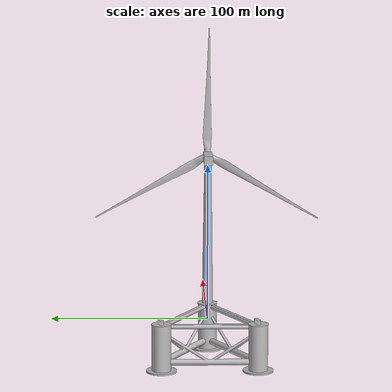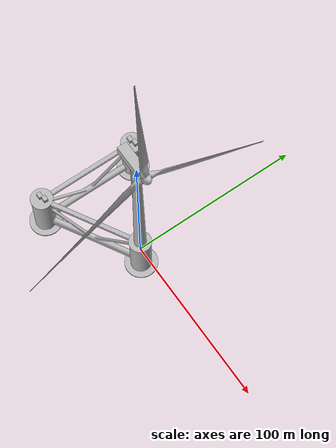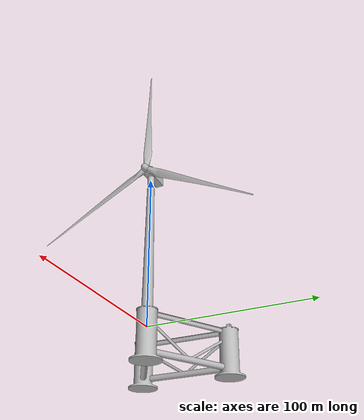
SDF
<?xml version="1.0"?>
<sdf version="1.9" xmlns:insem="https://example.org/insem">
  <model name="offshore_wind_turbine">
    <static>false</static>
    <self_collide>false</self_collide>
    <insem:asset id="FWT-01" class="floating_wind_turbine" name="Aerogenerador flotante offshore 8,4 MW"/>
    <link name="platform">
      <pose>0.00000 0.00000 0.00000 0.00000 -0.00000 0.00000</pose>
      <gravity>false</gravity>
      <inertial>
        <pose>0.0000 0.0000 0.0000 0 0 0</pose>
        <mass>10000.0</mass>
        <inertia><ixx>1666.7</ixx><ixy>0</ixy><ixz>0</ixz><iyy>1666.7</iyy><iyz>0</iyz><izz>1666.7</izz></inertia>
      </inertial>
    </link>
    <link name="column_0">
      <pose>0.00000 0.00000 0.00000 0.00000 -0.00000 0.00000</pose>
      <gravity>false</gravity>
      <inertial>
        <pose>0.0000 0.0000 -4.7500 0 0 0</pose>
        <mass>10000.0</mass>
        <inertia><ixx>1076041.7</ixx><ixy>0</ixy><ixz>0</ixz><iyy>1076041.7</iyy><iyz>0</iyz><izz>601666.7</izz></inertia>
      </inertial>
      <collision name="c0"><pose>0.00000 0.00000 -9.25000 0.00000 -0.00000 0.00000</pose><geometry><cylinder><radius>6.000</radius><length>21.500</length></cylinder></geometry></collision>
      <collision name="c1"><pose>0.00000 0.00000 5.75000 0.00000 -0.00000 0.00000</pose><geometry><cylinder><radius>6.000</radius><length>8.500</length></cylinder></geometry></collision>
      <collision name="c2"><pose>0.00000 0.00000 -19.50000 0.00000 -0.00000 0.00000</pose><geometry><cylinder><radius>9.500</radius><length>1.000</length></cylinder></geometry></collision>
      <collision name="c3"><pose>0.00000 0.00000 10.25000 0.00000 -0.00000 0.00000</pose><geometry><cylinder><radius>6.400</radius><length>0.500</length></cylinder></geometry></collision>
      <visual name="mesh"><geometry><mesh><uri>meshes/column_0.obj</uri></mesh></geometry></visual>
    </link>
    <link name="column_1">
      <pose>-51.96152 30.00000 0.00000 0.00000 -0.00000 0.00000</pose>
      <gravity>false</gravity>
      <inertial>
        <pose>0.0000 0.0000 -4.7500 0 0 0</pose>
        <mass>10000.0</mass>
        <inertia><ixx>1076041.7</ixx><ixy>0</ixy><ixz>0</ixz><iyy>1076041.7</iyy><iyz>0</iyz><izz>601666.7</izz></inertia>
      </inertial>
      <collision name="c0"><pose>0.00000 0.00000 -9.25000 0.00000 -0.00000 0.00000</pose><geometry><cylinder><radius>6.000</radius><length>21.500</length></cylinder></geometry></collision>
      <collision name="c1"><pose>0.00000 0.00000 5.75000 0.00000 -0.00000 0.00000</pose><geometry><cylinder><radius>6.000</radius><length>8.500</length></cylinder></geometry></collision>
      <collision name="c2"><pose>0.00000 0.00000 -19.50000 0.00000 -0.00000 0.00000</pose><geometry><cylinder><radius>9.500</radius><length>1.000</length></cylinder></geometry></collision>
      <collision name="c3"><pose>0.00000 0.00000 10.25000 0.00000 -0.00000 0.00000</pose><geometry><cylinder><radius>6.400</radius><length>0.500</length></cylinder></geometry></collision>
      <visual name="mesh"><geometry><mesh><uri>meshes/column_1.obj</uri></mesh></geometry></visual>
    </link>
    <link name="column_2">
      <pose>-51.96152 -30.00000 0.00000 0.00000 -0.00000 0.00000</pose>
      <gravity>false</gravity>
      <inertial>
        <pose>0.0000 0.0000 -4.7500 0 0 0</pose>
        <mass>10000.0</mass>
        <inertia><ixx>1076041.7</ixx><ixy>0</ixy><ixz>0</ixz><iyy>1076041.7</iyy><iyz>0</iyz><izz>601666.7</izz></inertia>
      </inertial>
      <collision name="c0"><pose>0.00000 0.00000 -9.25000 0.00000 -0.00000 0.00000</pose><geometry><cylinder><radius>6.000</radius><length>21.500</length></cylinder></geometry></collision>
      <collision name="c1"><pose>0.00000 0.00000 5.75000 0.00000 -0.00000 0.00000</pose><geometry><cylinder><radius>6.000</radius><length>8.500</length></cylinder></geometry></collision>
      <collision name="c2"><pose>0.00000 0.00000 -19.50000 0.00000 -0.00000 0.00000</pose><geometry><cylinder><radius>9.500</radius><length>1.000</length></cylinder></geometry></collision>
      <collision name="c3"><pose>0.00000 0.00000 10.25000 0.00000 -0.00000 0.00000</pose><geometry><cylinder><radius>6.400</radius><length>0.500</length></cylinder></geometry></collision>
      <visual name="mesh"><geometry><mesh><uri>meshes/column_2.obj</uri></mesh></geometry></visual>
    </link>
    <link name="equipment_1">
      <pose>-51.96152 30.00000 11.80000 0.00000 -0.00000 0.00000</pose>
      <gravity>false</gravity>
      <inertial>
        <pose>0.1500 0.6000 0.0000 0 0 0</pose>
        <mass>10000.0</mass>
        <inertia><ixx>16433.3</ixx><ixy>0</ixy><ixz>0</ixz><iyy>40841.7</iyy><iyz>0</iyz><izz>46008.3</izz></inertia>
      </inertial>
      <collision name="c0"><pose>-1.50000 0.00000 0.00000 0.00000 -0.00000 0.00000</pose><geometry><box><size>3.200 2.400 2.600</size></box></geometry></collision>
      <collision name="c1"><pose>1.80000 1.20000 0.00000 0.00000 -0.00000 0.00000</pose><geometry><box><size>3.200 2.400 2.600</size></box></geometry></collision>
      <visual name="mesh"><geometry><mesh><uri>meshes/equipment_1.obj</uri></mesh></geometry></visual>
    </link>
    <link name="equipment_2">
      <pose>-51.96152 -30.00000 11.80000 0.00000 -0.00000 0.00000</pose>
      <gravity>false</gravity>
      <inertial>
        <pose>0.1500 0.6000 0.0000 0 0 0</pose>
        <mass>10000.0</mass>
        <inertia><ixx>16433.3</ixx><ixy>0</ixy><ixz>0</ixz><iyy>40841.7</iyy><iyz>0</iyz><izz>46008.3</izz></inertia>
      </inertial>
      <collision name="c0"><pose>-1.50000 0.00000 0.00000 0.00000 -0.00000 0.00000</pose><geometry><box><size>3.200 2.400 2.600</size></box></geometry></collision>
      <collision name="c1"><pose>1.80000 1.20000 0.00000 0.00000 -0.00000 0.00000</pose><geometry><box><size>3.200 2.400 2.600</size></box></geometry></collision>
      <visual name="mesh"><geometry><mesh><uri>meshes/equipment_2.obj</uri></mesh></geometry></visual>
    </link>
    <link name="arm_0_1">
      <pose>0.00000 0.00000 0.00000 0.00000 -0.00000 0.00000</pose>
      <gravity>false</gravity>
      <inertial>
        <pose>-25.9808 15.0000 8.7525 0 0 0</pose>
        <mass>10000.0</mass>
        <inertia><ixx>581917.2</ixx><ixy>0</ixy><ixz>0</ixz><iyy>1539100.5</iyy><iyz>0</iyz><izz>2105766.6</izz></inertia>
      </inertial>
      <collision name="c0"><pose>-25.98076 15.00000 8.54000 0.00000 -1.57080 0.00000</pose><geometry><capsule><radius>1.300</radius><length>48.000</length></capsule></geometry></collision>
      <collision name="c1"><pose>-25.98076 15.00000 10.14000 0.00000 -1.57080 0.00000</pose><geometry><box><size>0.250 2.400 48.000</size></box></geometry></collision>
      <visual name="mesh"><geometry><mesh><uri>meshes/arm_0_1.obj</uri></mesh></geometry></visual>
    </link>
    <link name="arm_1_2">
      <pose>0.00000 0.00000 0.00000 0.00000 -0.00000 0.00000</pose>
      <gravity>false</gravity>
      <inertial>
        <pose>-51.9615 0.0000 8.7525 0 0 0</pose>
        <mass>10000.0</mass>
        <inertia><ixx>1927625.5</ixx><ixy>0</ixy><ixz>0</ixz><iyy>13258.9</iyy><iyz>0</iyz><izz>1925633.3</izz></inertia>
      </inertial>
      <collision name="c0"><pose>-51.96152 0.00000 8.54000 0.00000 -1.57080 0.00000</pose><geometry><capsule><radius>1.300</radius><length>48.000</length></capsule></geometry></collision>
      <collision name="c1"><pose>-51.96152 0.00000 10.14000 0.00000 -1.57080 0.00000</pose><geometry><box><size>0.250 2.400 48.000</size></box></geometry></collision>
      <visual name="mesh"><geometry><mesh><uri>meshes/arm_1_2.obj</uri></mesh></geometry></visual>
    </link>
    <link name="arm_2_0">
      <pose>0.00000 0.00000 0.00000 0.00000 -0.00000 0.00000</pose>
      <gravity>false</gravity>
      <inertial>
        <pose>-25.9808 -15.0000 8.7525 0 0 0</pose>
        <mass>10000.0</mass>
        <inertia><ixx>581917.2</ixx><ixy>0</ixy><ixz>0</ixz><iyy>1539100.5</iyy><iyz>0</iyz><izz>2105766.6</izz></inertia>
      </inertial>
      <collision name="c0"><pose>-25.98076 -15.00000 8.54000 0.00000 -1.57080 0.00000</pose><geometry><capsule><radius>1.300</radius><length>48.000</length></capsule></geometry></collision>
      <collision name="c1"><pose>-25.98076 -15.00000 10.14000 0.00000 -1.57080 0.00000</pose><geometry><box><size>0.250 2.400 48.000</size></box></geometry></collision>
      <visual name="mesh"><geometry><mesh><uri>meshes/arm_2_0.obj</uri></mesh></geometry></visual>
    </link>
    <link name="jacket">
      <pose>0.00000 0.00000 0.00000 0.00000 -0.00000 0.00000</pose>
      <gravity>false</gravity>
      <inertial>
        <pose>-26.4808 0.0000 -6.6219 0 0 0</pose>
        <mass>10000.0</mass>
        <inertia><ixx>3649574.8</ixx><ixy>0</ixy><ixz>0</ixz><iyy>2810472.2</iyy><iyz>0</iyz><izz>5873717.8</izz></inertia>
      </inertial>
      <collision name="c0"><pose>-25.98076 15.00000 -14.00000 0.00000 -1.57080 0.00000</pose><geometry><capsule><radius>2.000</radius><length>60.000</length></capsule></geometry></collision>
      <collision name="c1"><pose>-51.96152 0.00000 -14.00000 0.00000 -1.57080 0.00000</pose><geometry><capsule><radius>2.000</radius><length>60.000</length></capsule></geometry></collision>
      <collision name="c2"><pose>-25.98076 -15.00000 -14.00000 0.00000 -1.57080 0.00000</pose><geometry><capsule><radius>2.000</radius><length>60.000</length></capsule></geometry></collision>
      <collision name="c3"><pose>-36.71948 21.20000 -6.00000 -0.00000 -0.99783 -0.52360</pose><geometry><capsule><radius>0.900</radius><length>29.513</length></capsule></geometry></collision>
      <collision name="c4"><pose>-15.24205 8.80000 -6.00000 0.00000 -0.99783 2.61799</pose><geometry><capsule><radius>0.900</radius><length>29.513</length></capsule></geometry></collision>
      <collision name="c5"><pose>-51.96152 -12.40000 -6.00000 0.00000 -0.99783 1.57080</pose><geometry><capsule><radius>0.900</radius><length>29.513</length></capsule></geometry></collision>
      <collision name="c6"><pose>-51.96152 12.40000 -6.00000 0.00000 -0.99783 -1.57080</pose><geometry><capsule><radius>0.900</radius><length>29.513</length></capsule></geometry></collision>
      <collision name="c7"><pose>-15.24205 -8.80000 -6.00000 0.00000 -0.99783 -2.61799</pose><geometry><capsule><radius>0.900</radius><length>29.513</length></capsule></geometry></collision>
      <collision name="c8"><pose>-36.71948 -21.20000 -6.00000 0.00000 -0.99783 0.52360</pose><geometry><capsule><radius>0.900</radius><length>29.513</length></capsule></geometry></collision>
      <visual name="mesh"><geometry><mesh><uri>meshes/jacket.obj</uri></mesh></geometry></visual>
    </link>
    <link name="tower">
      <pose>0.00000 0.00000 10.50000 0.00000 -0.00000 0.00000</pose>
      <gravity>false</gravity>
      <inertial>
        <pose>0.0000 0.0000 46.2500 0 0 0</pose>
        <mass>10000.0</mass>
        <inertia><ixx>7168741.7</ixx><ixy>0</ixy><ixz>0</ixz><iyy>7168741.7</iyy><iyz>0</iyz><izz>77066.7</izz></inertia>
      </inertial>
      <collision name="c0"><pose>0.00000 0.00000 1.25000 0.00000 -0.00000 0.00000</pose><geometry><cylinder><radius>3.400</radius><length>2.500</length></cylinder></geometry></collision>
      <collision name="c1"><pose>0.00000 0.00000 47.50000 0.00000 -0.00000 0.00000</pose><geometry><cylinder><radius>2.800</radius><length>90.000</length></cylinder></geometry></collision>
      <visual name="mesh"><geometry><mesh><uri>meshes/tower.obj</uri></mesh></geometry></visual>
    </link>
    <link name="nacelle">
      <pose>0.00000 0.00000 103.00000 0.00000 -0.00000 0.00000</pose>
      <gravity>false</gravity>
      <inertial>
        <pose>-3.5000 0.0000 2.2000 0 0 0</pose>
        <mass>375000.0</mass>
        <inertia><ixx>1890625.0</ixx><ixy>0</ixy><ixz>0</ixz><iyy>9976562.5</iyy><iyz>0</iyz><izz>9976562.5</izz></inertia>
      </inertial>
      <collision name="c0"><pose>-3.50000 0.00000 2.20000 0.00000 -0.00000 0.00000</pose><geometry><box><size>17.000 5.500 5.500</size></box></geometry></collision>
      <collision name="c1"><pose>0.00000 0.00000 0.10000 0.00000 -0.00000 0.00000</pose><geometry><cylinder><radius>2.600</radius><length>1.200</length></cylinder></geometry></collision>
      <visual name="mesh"><geometry><mesh><uri>meshes/nacelle.obj</uri></mesh></geometry></visual>
    </link>
    <link name="hub">
      <pose>7.00000 0.00000 105.00000 0.00000 -0.05236 0.00000</pose>
      <gravity>false</gravity>
      <inertial>
        <pose>1.0000 0.0000 0.0000 0 0 0</pose>
        <mass>10000.0</mass>
        <inertia><ixx>45066.7</ixx><ixy>0</ixy><ixz>0</ixz><iyy>45066.7</iyy><iyz>0</iyz><izz>45066.7</izz></inertia>
      </inertial>
      <collision name="c0"><pose>1.00000 0.00000 0.00000 0.00000 -0.00000 0.00000</pose><geometry><sphere><radius>2.600</radius></sphere></geometry></collision>
      <visual name="mesh"><geometry><mesh><uri>meshes/hub.obj</uri></mesh></geometry></visual>
    </link>
    <link name="blade_A">
      <pose>6.90580 0.00000 106.79753 0.00000 -0.05236 0.00000</pose>
      <gravity>false</gravity>
      <inertial>
        <pose>0.0000 0.0000 40.1000 0 0 0</pose>
        <mass>10000.0</mass>
        <inertia><ixx>5385972.3</ixx><ixy>0</ixy><ixz>0</ixz><iyy>5373366.7</iyy><iyz>0</iyz><izz>39272.3</izz></inertia>
      </inertial>
      <collision name="c0"><pose>0.00000 0.00000 1.25313 0.00000 -0.00000 0.00000</pose><geometry><box><size>4.000 4.379 2.506</size></box></geometry></collision>
      <collision name="c1"><pose>0.00000 0.00000 3.75938 0.00000 -0.00000 0.00000</pose><geometry><box><size>3.201 4.759 2.506</size></box></geometry></collision>
      <collision name="c2"><pose>0.00000 0.00000 6.26562 0.00000 -0.00000 0.00000</pose><geometry><box><size>2.402 5.138 2.506</size></box></geometry></collision>
      <collision name="c3"><pose>0.00000 0.00000 8.77188 0.00000 -0.00000 0.00000</pose><geometry><box><size>1.854 5.518 2.506</size></box></geometry></collision>
      <collision name="c4"><pose>0.00000 0.00000 11.27812 0.00000 -0.00000 0.00000</pose><geometry><box><size>1.385 5.579 2.506</size></box></geometry></collision>
      <collision name="c5"><pose>0.00000 0.00000 13.78438 0.00000 -0.00000 0.00000</pose><geometry><box><size>1.115 5.579 2.506</size></box></geometry></collision>
      <collision name="c6"><pose>0.00000 0.00000 16.29062 0.00000 -0.00000 0.00000</pose><geometry><box><size>1.029 5.347 2.506</size></box></geometry></collision>
      <collision name="c7"><pose>0.00000 0.00000 18.79688 0.00000 -0.00000 0.00000</pose><geometry><box><size>0.943 5.114 2.506</size></box></geometry></collision>
      <collision name="c8"><pose>0.00000 0.00000 21.30313 0.00000 -0.00000 0.00000</pose><geometry><box><size>0.857 4.882 2.506</size></box></geometry></collision>
      <collision name="c9"><pose>0.00000 0.00000 23.80938 0.00000 -0.00000 0.00000</pose><geometry><box><size>0.772 4.649 2.506</size></box></geometry></collision>
      <collision name="c10"><pose>0.00000 0.00000 26.31563 0.00000 -0.00000 0.00000</pose><geometry><box><size>0.699 4.424 2.506</size></box></geometry></collision>
      <collision name="c11"><pose>0.00000 0.00000 28.82188 0.00000 -0.00000 0.00000</pose><geometry><box><size>0.646 4.208 2.506</size></box></geometry></collision>
      <collision name="c12"><pose>0.00000 0.00000 31.32813 0.00000 -0.00000 0.00000</pose><geometry><box><size>0.593 3.992 2.506</size></box></geometry></collision>
      <collision name="c13"><pose>0.00000 0.00000 33.83438 0.00000 -0.00000 0.00000</pose><geometry><box><size>0.539 3.777 2.506</size></box></geometry></collision>
      <collision name="c14"><pose>0.00000 0.00000 36.34063 0.00000 -0.00000 0.00000</pose><geometry><box><size>0.486 3.561 2.506</size></box></geometry></collision>
      <collision name="c15"><pose>0.00000 0.00000 38.84687 0.00000 -0.00000 0.00000</pose><geometry><box><size>0.433 3.346 2.506</size></box></geometry></collision>
      <collision name="c16"><pose>0.00000 0.00000 41.35313 0.00000 -0.00000 0.00000</pose><geometry><box><size>0.380 3.130 2.506</size></box></geometry></collision>
      <collision name="c17"><pose>0.00000 0.00000 43.85938 0.00000 -0.00000 0.00000</pose><geometry><box><size>0.357 2.946 2.506</size></box></geometry></collision>
      <collision name="c18"><pose>0.00000 0.00000 46.36563 0.00000 -0.00000 0.00000</pose><geometry><box><size>0.333 2.761 2.506</size></box></geometry></collision>
      <collision name="c19"><pose>0.00000 0.00000 48.87188 0.00000 -0.00000 0.00000</pose><geometry><box><size>0.310 2.577 2.506</size></box></geometry></collision>
      <collision name="c20"><pose>0.00000 0.00000 51.37812 0.00000 -0.00000 0.00000</pose><geometry><box><size>0.286 2.392 2.506</size></box></geometry></collision>
      <collision name="c21"><pose>0.00000 0.00000 53.88438 0.00000 -0.00000 0.00000</pose><geometry><box><size>0.263 2.208 2.506</size></box></geometry></collision>
      <collision name="c22"><pose>0.00000 0.00000 56.39062 0.00000 -0.00000 0.00000</pose><geometry><box><size>0.239 2.024 2.506</size></box></geometry></collision>
      <collision name="c23"><pose>0.00000 0.00000 58.89688 0.00000 -0.00000 0.00000</pose><geometry><box><size>0.220 1.863 2.506</size></box></geometry></collision>
      <collision name="c24"><pose>0.00000 0.00000 61.40313 0.00000 -0.00000 0.00000</pose><geometry><box><size>0.202 1.717 2.506</size></box></geometry></collision>
      <collision name="c25"><pose>0.00000 0.00000 63.90938 0.00000 -0.00000 0.00000</pose><geometry><box><size>0.185 1.572 2.506</size></box></geometry></collision>
      <collision name="c26"><pose>0.00000 0.00000 66.41563 0.00000 -0.00000 0.00000</pose><geometry><box><size>0.168 1.427 2.506</size></box></geometry></collision>
      <collision name="c27"><pose>0.00000 0.00000 68.92188 0.00000 -0.00000 0.00000</pose><geometry><box><size>0.151 1.282 2.506</size></box></geometry></collision>
      <collision name="c28"><pose>0.00000 0.00000 71.42812 0.00000 -0.00000 0.00000</pose><geometry><box><size>0.134 1.136 2.506</size></box></geometry></collision>
      <collision name="c29"><pose>0.00000 0.00000 73.93438 0.00000 -0.00000 0.00000</pose><geometry><box><size>0.118 1.003 2.506</size></box></geometry></collision>
      <collision name="c30"><pose>0.00000 0.00000 76.44063 0.00000 -0.00000 0.00000</pose><geometry><box><size>0.109 0.919 2.506</size></box></geometry></collision>
      <collision name="c31"><pose>0.00000 0.00000 78.94688 0.00000 -0.00000 0.00000</pose><geometry><box><size>0.099 0.834 2.506</size></box></geometry></collision>
      <visual name="mesh"><geometry><mesh><uri>meshes/blade_A.obj</uri></mesh></geometry></visual>
    </link>
    <link name="blade_B">
      <pose>7.04710 -1.55885 104.10123 2.09440 -0.05236 0.00000</pose>
      <gravity>false</gravity>
      <inertial>
        <pose>0.0000 0.0000 40.1000 0 0 0</pose>
        <mass>10000.0</mass>
        <inertia><ixx>5385972.3</ixx><ixy>0</ixy><ixz>0</ixz><iyy>5373366.7</iyy><iyz>0</iyz><izz>39272.3</izz></inertia>
      </inertial>
      <collision name="c0"><pose>0.00000 0.00000 1.25313 0.00000 -0.00000 0.00000</pose><geometry><box><size>4.000 4.379 2.506</size></box></geometry></collision>
      <collision name="c1"><pose>0.00000 0.00000 3.75938 0.00000 -0.00000 0.00000</pose><geometry><box><size>3.201 4.759 2.506</size></box></geometry></collision>
      <collision name="c2"><pose>0.00000 0.00000 6.26562 0.00000 -0.00000 0.00000</pose><geometry><box><size>2.402 5.138 2.506</size></box></geometry></collision>
      <collision name="c3"><pose>0.00000 0.00000 8.77188 0.00000 -0.00000 0.00000</pose><geometry><box><size>1.854 5.518 2.506</size></box></geometry></collision>
      <collision name="c4"><pose>0.00000 0.00000 11.27812 0.00000 -0.00000 0.00000</pose><geometry><box><size>1.385 5.579 2.506</size></box></geometry></collision>
      <collision name="c5"><pose>0.00000 0.00000 13.78438 0.00000 -0.00000 0.00000</pose><geometry><box><size>1.115 5.579 2.506</size></box></geometry></collision>
      <collision name="c6"><pose>0.00000 0.00000 16.29062 0.00000 -0.00000 0.00000</pose><geometry><box><size>1.029 5.347 2.506</size></box></geometry></collision>
      <collision name="c7"><pose>0.00000 0.00000 18.79688 0.00000 -0.00000 0.00000</pose><geometry><box><size>0.943 5.114 2.506</size></box></geometry></collision>
      <collision name="c8"><pose>0.00000 0.00000 21.30313 0.00000 -0.00000 0.00000</pose><geometry><box><size>0.857 4.882 2.506</size></box></geometry></collision>
      <collision name="c9"><pose>0.00000 0.00000 23.80938 0.00000 -0.00000 0.00000</pose><geometry><box><size>0.772 4.649 2.506</size></box></geometry></collision>
      <collision name="c10"><pose>0.00000 0.00000 26.31563 0.00000 -0.00000 0.00000</pose><geometry><box><size>0.699 4.424 2.506</size></box></geometry></collision>
      <collision name="c11"><pose>0.00000 0.00000 28.82188 0.00000 -0.00000 0.00000</pose><geometry><box><size>0.646 4.208 2.506</size></box></geometry></collision>
      <collision name="c12"><pose>0.00000 0.00000 31.32813 0.00000 -0.00000 0.00000</pose><geometry><box><size>0.593 3.992 2.506</size></box></geometry></collision>
      <collision name="c13"><pose>0.00000 0.00000 33.83438 0.00000 -0.00000 0.00000</pose><geometry><box><size>0.539 3.777 2.506</size></box></geometry></collision>
      <collision name="c14"><pose>0.00000 0.00000 36.34063 0.00000 -0.00000 0.00000</pose><geometry><box><size>0.486 3.561 2.506</size></box></geometry></collision>
      <collision name="c15"><pose>0.00000 0.00000 38.84687 0.00000 -0.00000 0.00000</pose><geometry><box><size>0.433 3.346 2.506</size></box></geometry></collision>
      <collision name="c16"><pose>0.00000 0.00000 41.35313 0.00000 -0.00000 0.00000</pose><geometry><box><size>0.380 3.130 2.506</size></box></geometry></collision>
      <collision name="c17"><pose>0.00000 0.00000 43.85938 0.00000 -0.00000 0.00000</pose><geometry><box><size>0.357 2.946 2.506</size></box></geometry></collision>
      <collision name="c18"><pose>0.00000 0.00000 46.36563 0.00000 -0.00000 0.00000</pose><geometry><box><size>0.333 2.761 2.506</size></box></geometry></collision>
      <collision name="c19"><pose>0.00000 0.00000 48.87188 0.00000 -0.00000 0.00000</pose><geometry><box><size>0.310 2.577 2.506</size></box></geometry></collision>
      <collision name="c20"><pose>0.00000 0.00000 51.37812 0.00000 -0.00000 0.00000</pose><geometry><box><size>0.286 2.392 2.506</size></box></geometry></collision>
      <collision name="c21"><pose>0.00000 0.00000 53.88438 0.00000 -0.00000 0.00000</pose><geometry><box><size>0.263 2.208 2.506</size></box></geometry></collision>
      <collision name="c22"><pose>0.00000 0.00000 56.39062 0.00000 -0.00000 0.00000</pose><geometry><box><size>0.239 2.024 2.506</size></box></geometry></collision>
      <collision name="c23"><pose>0.00000 0.00000 58.89688 0.00000 -0.00000 0.00000</pose><geometry><box><size>0.220 1.863 2.506</size></box></geometry></collision>
      <collision name="c24"><pose>0.00000 0.00000 61.40313 0.00000 -0.00000 0.00000</pose><geometry><box><size>0.202 1.717 2.506</size></box></geometry></collision>
      <collision name="c25"><pose>0.00000 0.00000 63.90938 0.00000 -0.00000 0.00000</pose><geometry><box><size>0.185 1.572 2.506</size></box></geometry></collision>
      <collision name="c26"><pose>0.00000 0.00000 66.41563 0.00000 -0.00000 0.00000</pose><geometry><box><size>0.168 1.427 2.506</size></box></geometry></collision>
      <collision name="c27"><pose>0.00000 0.00000 68.92188 0.00000 -0.00000 0.00000</pose><geometry><box><size>0.151 1.282 2.506</size></box></geometry></collision>
      <collision name="c28"><pose>0.00000 0.00000 71.42812 0.00000 -0.00000 0.00000</pose><geometry><box><size>0.134 1.136 2.506</size></box></geometry></collision>
      <collision name="c29"><pose>0.00000 0.00000 73.93438 0.00000 -0.00000 0.00000</pose><geometry><box><size>0.118 1.003 2.506</size></box></geometry></collision>
      <collision name="c30"><pose>0.00000 0.00000 76.44063 0.00000 -0.00000 0.00000</pose><geometry><box><size>0.109 0.919 2.506</size></box></geometry></collision>
      <collision name="c31"><pose>0.00000 0.00000 78.94688 0.00000 -0.00000 0.00000</pose><geometry><box><size>0.099 0.834 2.506</size></box></geometry></collision>
      <visual name="mesh"><geometry><mesh><uri>meshes/blade_B.obj</uri></mesh></geometry></visual>
    </link>
    <link name="blade_C">
      <pose>7.04710 1.55885 104.10123 -2.09440 -0.05236 0.00000</pose>
      <gravity>false</gravity>
      <inertial>
        <pose>0.0000 0.0000 40.1000 0 0 0</pose>
        <mass>10000.0</mass>
        <inertia><ixx>5385972.3</ixx><ixy>0</ixy><ixz>0</ixz><iyy>5373366.7</iyy><iyz>0</iyz><izz>39272.3</izz></inertia>
      </inertial>
      <collision name="c0"><pose>0.00000 0.00000 1.25313 0.00000 -0.00000 0.00000</pose><geometry><box><size>4.000 4.379 2.506</size></box></geometry></collision>
      <collision name="c1"><pose>0.00000 0.00000 3.75938 0.00000 -0.00000 0.00000</pose><geometry><box><size>3.201 4.759 2.506</size></box></geometry></collision>
      <collision name="c2"><pose>0.00000 0.00000 6.26562 0.00000 -0.00000 0.00000</pose><geometry><box><size>2.402 5.138 2.506</size></box></geometry></collision>
      <collision name="c3"><pose>0.00000 0.00000 8.77188 0.00000 -0.00000 0.00000</pose><geometry><box><size>1.854 5.518 2.506</size></box></geometry></collision>
      <collision name="c4"><pose>0.00000 0.00000 11.27812 0.00000 -0.00000 0.00000</pose><geometry><box><size>1.385 5.579 2.506</size></box></geometry></collision>
      <collision name="c5"><pose>0.00000 0.00000 13.78438 0.00000 -0.00000 0.00000</pose><geometry><box><size>1.115 5.579 2.506</size></box></geometry></collision>
      <collision name="c6"><pose>0.00000 0.00000 16.29062 0.00000 -0.00000 0.00000</pose><geometry><box><size>1.029 5.347 2.506</size></box></geometry></collision>
      <collision name="c7"><pose>0.00000 0.00000 18.79688 0.00000 -0.00000 0.00000</pose><geometry><box><size>0.943 5.114 2.506</size></box></geometry></collision>
      <collision name="c8"><pose>0.00000 0.00000 21.30313 0.00000 -0.00000 0.00000</pose><geometry><box><size>0.857 4.882 2.506</size></box></geometry></collision>
      <collision name="c9"><pose>0.00000 0.00000 23.80938 0.00000 -0.00000 0.00000</pose><geometry><box><size>0.772 4.649 2.506</size></box></geometry></collision>
      <collision name="c10"><pose>0.00000 0.00000 26.31563 0.00000 -0.00000 0.00000</pose><geometry><box><size>0.699 4.424 2.506</size></box></geometry></collision>
      <collision name="c11"><pose>0.00000 0.00000 28.82188 0.00000 -0.00000 0.00000</pose><geometry><box><size>0.646 4.208 2.506</size></box></geometry></collision>
      <collision name="c12"><pose>0.00000 0.00000 31.32813 0.00000 -0.00000 0.00000</pose><geometry><box><size>0.593 3.992 2.506</size></box></geometry></collision>
      <collision name="c13"><pose>0.00000 0.00000 33.83438 0.00000 -0.00000 0.00000</pose><geometry><box><size>0.539 3.777 2.506</size></box></geometry></collision>
      <collision name="c14"><pose>0.00000 0.00000 36.34063 0.00000 -0.00000 0.00000</pose><geometry><box><size>0.486 3.561 2.506</size></box></geometry></collision>
      <collision name="c15"><pose>0.00000 0.00000 38.84687 0.00000 -0.00000 0.00000</pose><geometry><box><size>0.433 3.346 2.506</size></box></geometry></collision>
      <collision name="c16"><pose>0.00000 0.00000 41.35313 0.00000 -0.00000 0.00000</pose><geometry><box><size>0.380 3.130 2.506</size></box></geometry></collision>
      <collision name="c17"><pose>0.00000 0.00000 43.85938 0.00000 -0.00000 0.00000</pose><geometry><box><size>0.357 2.946 2.506</size></box></geometry></collision>
      <collision name="c18"><pose>0.00000 0.00000 46.36563 0.00000 -0.00000 0.00000</pose><geometry><box><size>0.333 2.761 2.506</size></box></geometry></collision>
      <collision name="c19"><pose>0.00000 0.00000 48.87188 0.00000 -0.00000 0.00000</pose><geometry><box><size>0.310 2.577 2.506</size></box></geometry></collision>
      <collision name="c20"><pose>0.00000 0.00000 51.37812 0.00000 -0.00000 0.00000</pose><geometry><box><size>0.286 2.392 2.506</size></box></geometry></collision>
      <collision name="c21"><pose>0.00000 0.00000 53.88438 0.00000 -0.00000 0.00000</pose><geometry><box><size>0.263 2.208 2.506</size></box></geometry></collision>
      <collision name="c22"><pose>0.00000 0.00000 56.39062 0.00000 -0.00000 0.00000</pose><geometry><box><size>0.239 2.024 2.506</size></box></geometry></collision>
      <collision name="c23"><pose>0.00000 0.00000 58.89688 0.00000 -0.00000 0.00000</pose><geometry><box><size>0.220 1.863 2.506</size></box></geometry></collision>
      <collision name="c24"><pose>0.00000 0.00000 61.40313 0.00000 -0.00000 0.00000</pose><geometry><box><size>0.202 1.717 2.506</size></box></geometry></collision>
      <collision name="c25"><pose>0.00000 0.00000 63.90938 0.00000 -0.00000 0.00000</pose><geometry><box><size>0.185 1.572 2.506</size></box></geometry></collision>
      <collision name="c26"><pose>0.00000 0.00000 66.41563 0.00000 -0.00000 0.00000</pose><geometry><box><size>0.168 1.427 2.506</size></box></geometry></collision>
      <collision name="c27"><pose>0.00000 0.00000 68.92188 0.00000 -0.00000 0.00000</pose><geometry><box><size>0.151 1.282 2.506</size></box></geometry></collision>
      <collision name="c28"><pose>0.00000 0.00000 71.42812 0.00000 -0.00000 0.00000</pose><geometry><box><size>0.134 1.136 2.506</size></box></geometry></collision>
      <collision name="c29"><pose>0.00000 0.00000 73.93438 0.00000 -0.00000 0.00000</pose><geometry><box><size>0.118 1.003 2.506</size></box></geometry></collision>
      <collision name="c30"><pose>0.00000 0.00000 76.44063 0.00000 -0.00000 0.00000</pose><geometry><box><size>0.109 0.919 2.506</size></box></geometry></collision>
      <collision name="c31"><pose>0.00000 0.00000 78.94688 0.00000 -0.00000 0.00000</pose><geometry><box><size>0.099 0.834 2.506</size></box></geometry></collision>
      <visual name="mesh"><geometry><mesh><uri>meshes/blade_C.obj</uri></mesh></geometry></visual>
    </link>
    <joint name="world_anchor" type="fixed">
      <parent>world</parent>
      <child>platform</child>
    </joint>
    <joint name="column_0_joint" type="fixed">
      <parent>platform</parent>
      <child>column_0</child>
    </joint>
    <joint name="column_1_joint" type="fixed">
      <parent>platform</parent>
      <child>column_1</child>
    </joint>
    <joint name="column_2_joint" type="fixed">
      <parent>platform</parent>
      <child>column_2</child>
    </joint>
    <joint name="equipment_1_joint" type="fixed">
      <parent>column_1</parent>
      <child>equipment_1</child>
    </joint>
    <joint name="equipment_2_joint" type="fixed">
      <parent>column_2</parent>
      <child>equipment_2</child>
    </joint>
    <joint name="arm_0_1_joint" type="fixed">
      <parent>platform</parent>
      <child>arm_0_1</child>
    </joint>
    <joint name="arm_1_2_joint" type="fixed">
      <parent>platform</parent>
      <child>arm_1_2</child>
    </joint>
    <joint name="arm_2_0_joint" type="fixed">
      <parent>platform</parent>
      <child>arm_2_0</child>
    </joint>
    <joint name="jacket_joint" type="fixed">
      <parent>platform</parent>
      <child>jacket</child>
    </joint>
    <joint name="tower_joint" type="fixed">
      <parent>column_0</parent>
      <child>tower</child>
    </joint>
    <joint name="nacelle_joint" type="revolute">
      <parent>tower</parent>
      <child>nacelle</child>
      <axis>
        <xyz>0.000000 0.000000 1.000000</xyz>
        <limit><lower>-1e+16</lower><upper>1e+16</upper><effort>1e+12</effort><velocity>1e+06</velocity></limit>
      </axis>
    </joint>
    <joint name="hub_joint" type="revolute">
      <parent>nacelle</parent>
      <child>hub</child>
      <axis>
        <xyz>1.000000 0.000000 0.000000</xyz>
        <limit><lower>-1e+16</lower><upper>1e+16</upper><effort>1e+12</effort><velocity>1e+06</velocity></limit>
      </axis>
    </joint>
    <joint name="blade_A_joint" type="revolute">
      <parent>hub</parent>
      <child>blade_A</child>
      <axis>
        <xyz>0.000000 0.000000 1.000000</xyz>
        <limit><lower>-0.0872665</lower><upper>1.65806</upper><effort>1e+12</effort><velocity>1e+06</velocity></limit>
      </axis>
    </joint>
    <joint name="blade_B_joint" type="revolute">
      <parent>hub</parent>
      <child>blade_B</child>
      <axis>
        <xyz>0.000000 0.000000 1.000000</xyz>
        <limit><lower>-0.0872665</lower><upper>1.65806</upper><effort>1e+12</effort><velocity>1e+06</velocity></limit>
      </axis>
    </joint>
    <joint name="blade_C_joint" type="revolute">
      <parent>hub</parent>
      <child>blade_C</child>
      <axis>
        <xyz>0.000000 0.000000 1.000000</xyz>
        <limit><lower>-0.0872665</lower><upper>1.65806</upper><effort>1e+12</effort><velocity>1e+06</velocity></limit>
      </axis>
    </joint>
    <plugin filename="gz-sim-joint-position-controller-system" name="gz::sim::systems::JointPositionController">
      <joint_name>nacelle_joint</joint_name>
      <topic>/fwt01/nacelle_yaw/cmd_pos</topic>
      <p_gain>1.0e8</p_gain>
      <d_gain>1.5e8</d_gain>
      <cmd_max>1.0e10</cmd_max>
      <cmd_min>-1.0e10</cmd_min>
    </plugin>
    <plugin filename="gz-sim-joint-controller-system" name="gz::sim::systems::JointController">
      <joint_name>hub_joint</joint_name>
      <topic>/fwt01/rotor/cmd_vel</topic>
    </plugin>
    <plugin filename="gz-sim-joint-position-controller-system" name="gz::sim::systems::JointPositionController">
      <joint_name>blade_A_joint</joint_name>
      <topic>/fwt01/blade_A_pitch/cmd_pos</topic>
      <p_gain>3.0e6</p_gain>
      <d_gain>2.0e6</d_gain>
      <cmd_max>1.0e9</cmd_max>
      <cmd_min>-1.0e9</cmd_min>
    </plugin>
    <plugin filename="gz-sim-joint-position-controller-system" name="gz::sim::systems::JointPositionController">
      <joint_name>blade_B_joint</joint_name>
      <topic>/fwt01/blade_B_pitch/cmd_pos</topic>
      <p_gain>3.0e6</p_gain>
      <d_gain>2.0e6</d_gain>
      <cmd_max>1.0e9</cmd_max>
      <cmd_min>-1.0e9</cmd_min>
    </plugin>
    <plugin filename="gz-sim-joint-position-controller-system" name="gz::sim::systems::JointPositionController">
      <joint_name>blade_C_joint</joint_name>
      <topic>/fwt01/blade_C_pitch/cmd_pos</topic>
      <p_gain>3.0e6</p_gain>
      <d_gain>2.0e6</d_gain>
      <cmd_max>1.0e9</cmd_max>
      <cmd_min>-1.0e9</cmd_min>
    </plugin>
    <plugin filename="gz-sim-joint-state-publisher-system" name="gz::sim::systems::JointStatePublisher"/>
  </model>
</sdf>
